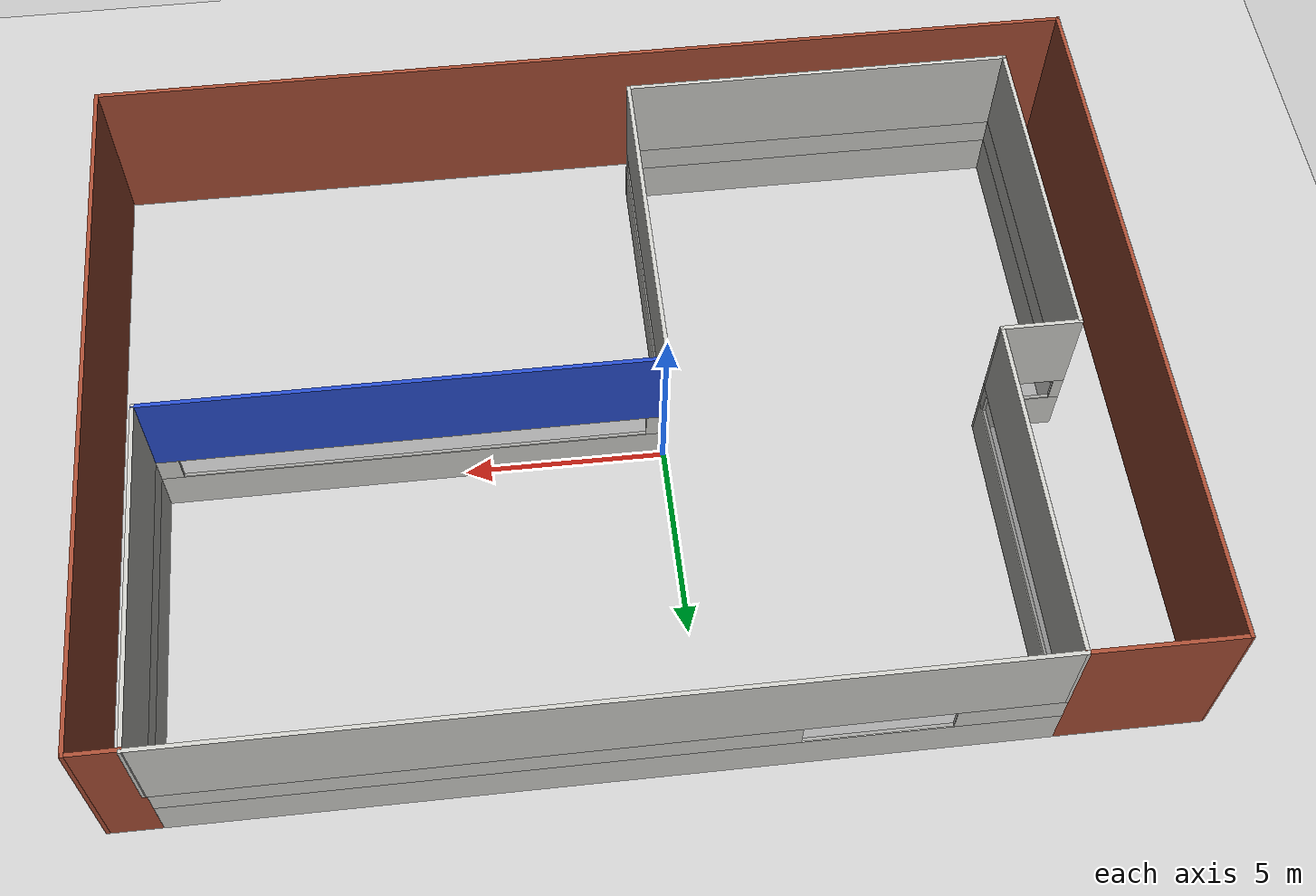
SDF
<sdf version="1.6">
 <world name="default">
  <light name="sun" type="directional">
   <pose>0 0 10 0 -0 0</pose>
   <diffuse>0.8 0.8 0.8 1</diffuse>
   <specular>0.1 0.1 0.1 1</specular>
   <attenuation>
    <range>1000</range>
    <constant>0.9</constant>
    <linear>0.01</linear>
    <quadratic>0.001</quadratic>
   </attenuation>
   <direction>-0.5 0.5 -1</direction>
  </light>
  <model name="ground_plane">
   <static>1</static>
   <link name="link">
    <collision name="collision">
     <geometry><plane><normal>0 0 1</normal><size>100 100</size></plane></geometry>
     <surface><friction><ode><mu>100</mu><mu2>50</mu2></ode></friction></surface>
    </collision>
    <visual name="visual">
     <cast_shadows>0</cast_shadows>
     <geometry><plane><normal>0 0 1</normal><size>100 100</size></plane></geometry>
     <material>
      <script><uri>file://media/materials/scripts/gazebo.material</uri><name>Gazebo/Grey</name></script>
     </material>
    </visual>
   </link>
  </model>
  <gravity>0 0 -9.8</gravity>
  <magnetic_field>6e-06 2.3e-05 -4.2e-05</magnetic_field>
  <atmosphere type="adiabatic"/>
  <physics name="default_physics" default="0" type="ode">
   <max_step_size>0.001</max_step_size>
   <real_time_factor>1</real_time_factor>
   <real_time_update_rate>0</real_time_update_rate>
   <ode>
    <solver>
     <thread_position_correction>1</thread_position_correction>
     <island_threads>500</island_threads>
    </solver>
   </ode>
  </physics>
  <scene><ambient>0.4 0.4 0.4 1</ambient><background>0.7 0.7 0.7 1</background><shadows>0</shadows></scene>
  <spherical_coordinates>
   <surface_model>EARTH_WGS84</surface_model>
   <latitude_deg>0</latitude_deg>
   <longitude_deg>0</longitude_deg>
   <elevation>0</elevation>
   <heading_deg>0</heading_deg>
  </spherical_coordinates>
  <model name="FAV4">
   <pose>1.01716 -0.554551 0 0 -0 0</pose>
   <link name="Wall_103">
    <collision name="Wall_103_Collision">
     <geometry><box><size>12.6 0.1 2.5</size></box></geometry>
     <pose>0 0 1.25 0 -0 0</pose>
    </collision>
    <visual name="Wall_103_Visual">
     <pose>0 0 1.25 0 -0 0</pose>
     <geometry><box><size>12.6 0.1 2.5</size></box></geometry>
     <material>
      <script><uri>file://media/materials/scripts/gazebo.material</uri><name>Gazebo/Blue</name></script>
      <ambient>1 1 1 1</ambient>
     </material>
     <meta><layer>2</layer></meta>
    </visual>
    <pose>5.20501 0.587484 1.95 0 -0 0</pose>
   </link>
   <link name="Wall_105">
    <collision name="Wall_105_Collision">
     <geometry><box><size>8.625 0.1 2.5</size></box></geometry>
     <pose>0 0 1.25 0 -0 0</pose>
    </collision>
    <visual name="Wall_105_Visual">
     <pose>0 0 1.25 0 -0 0</pose>
     <geometry><box><size>8.625 0.1 2.5</size></box></geometry>
     <material>
      <script><uri>file://media/materials/scripts/gazebo.material</uri><name>Gazebo/CeilingTiled</name></script>
      <ambient>1 1 1 1</ambient>
     </material>
     <meta><layer>2</layer></meta>
    </visual>
    <pose>11.455 4.84998 1.95 0 -0 1.5708</pose>
   </link>
   <link name="Wall_107">
    <collision name="Wall_107_Collision">
     <geometry><box><size>20.6 0.1 2.5</size></box></geometry>
     <pose>0 0 1.25 0 -0 0</pose>
    </collision>
    <visual name="Wall_107_Visual">
     <pose>0 0 1.25 0 -0 0</pose>
     <geometry><box><size>20.6 0.1 2.5</size></box></geometry>
     <material>
      <script><uri>file://media/materials/scripts/gazebo.material</uri><name>Gazebo/CeilingTiled</name></script>
      <ambient>1 1 1 1</ambient>
     </material>
     <meta><layer>2</layer></meta>
    </visual>
    <pose>1.20501 9.09998 1.95 0 -0 -3.14037</pose>
   </link>
   <link name="Wall_109">
    <collision name="Wall_109_Collision">
     <geometry><box><size>8.6 0.1 2.5</size></box></geometry>
     <pose>0 0 1.25 0 -0 0</pose>
    </collision>
    <visual name="Wall_109_Visual">
     <pose>0 0 1.25 0 -0 0</pose>
     <geometry><box><size>8.6 0.1 2.5</size></box></geometry>
     <material>
      <script><uri>file://media/materials/scripts/gazebo.material</uri><name>Gazebo/CeilingTiled</name></script>
      <ambient>1 1 1 1</ambient>
     </material>
     <meta><layer>2</layer></meta>
    </visual>
    <pose>-9.04499 4.83748 1.95 0 -0 -1.5708</pose>
   </link>
   <link name="Wall_11">
    <collision name="Wall_11_Collision">
     <geometry><box><size>8.6 0.1 1.2</size></box></geometry>
     <pose>0 0 0.6 0 -0 0</pose>
    </collision>
    <visual name="Wall_11_Visual">
     <pose>0 0 0.6 0 -0 0</pose>
     <geometry><box><size>8.6 0.1 1.2</size></box></geometry>
     <material>
      <script><uri>file://media/materials/scripts/gazebo.material</uri><name>Gazebo/CeilingTiled</name></script>
      <ambient>1 1 1 1</ambient>
     </material>
     <meta><layer>0</layer></meta>
    </visual>
    <pose>11.455 4.83748 0 0 -0 1.5708</pose>
   </link>
   <link name="Wall_111">
    <collision name="Wall_111_Collision">
     <geometry><box><size>2 0.1 2.5</size></box></geometry>
     <pose>0 0 1.25 0 -0 0</pose>
    </collision>
    <visual name="Wall_111_Visual">
     <pose>0 0 1.25 0 -0 0</pose>
     <geometry><box><size>2 0.1 2.5</size></box></geometry>
     <material>
      <script><uri>file://media/materials/scripts/gazebo.material</uri><name>Gazebo/CeilingTiled</name></script>
      <ambient>1 1 1 1</ambient>
     </material>
     <meta><layer>2</layer></meta>
    </visual>
    <pose>-9.99499 0.587484 1.95 0 -0 3.14159</pose>
   </link>
   <link name="Wall_113">
    <collision name="Wall_113_Collision">
     <geometry><box><size>8.6 0.1 2.5</size></box></geometry>
     <pose>0 0 1.25 0 -0 0</pose>
    </collision>
    <visual name="Wall_113_Visual">
     <pose>0 0 1.25 0 -0 0</pose>
     <geometry><box><size>8.6 0.1 2.5</size></box></geometry>
     <material>
      <script><uri>file://media/materials/scripts/gazebo.material</uri><name>Gazebo/CeilingTiled</name></script>
      <ambient>1 1 1 1</ambient>
     </material>
     <meta><layer>2</layer></meta>
    </visual>
    <pose>-10.945 -3.66252 1.95 0 -0 -1.5708</pose>
   </link>
   <link name="Wall_115">
    <collision name="Wall_115_Collision">
     <geometry><box><size>10 0.1 2.5</size></box></geometry>
     <pose>0 0 1.25 0 -0 0</pose>
    </collision>
    <visual name="Wall_115_Visual">
     <pose>0 0 1.25 0 -0 0</pose>
     <geometry><box><size>10 0.1 2.5</size></box></geometry>
     <material>
      <script><uri>file://media/materials/scripts/gazebo.material</uri><name>Gazebo/CeilingTiled</name></script>
      <ambient>1 1 1 1</ambient>
     </material>
     <meta><layer>2</layer></meta>
    </visual>
    <pose>-5.99499 -7.91252 1.95 0 -0 0</pose>
   </link>
   <link name="Wall_117">
    <collision name="Wall_117_Collision">
     <geometry><box><size>8.6 0.1 2.5</size></box></geometry>
     <pose>0 0 1.25 0 -0 0</pose>
    </collision>
    <visual name="Wall_117_Visual">
     <pose>0 0 1.25 0 -0 0</pose>
     <geometry><box><size>8.6 0.1 2.5</size></box></geometry>
     <material>
      <script><uri>file://media/materials/scripts/gazebo.material</uri><name>Gazebo/CeilingTiled</name></script>
      <ambient>1 1 1 1</ambient>
     </material>
     <meta><layer>2</layer></meta>
    </visual>
    <pose>-1.04499 -3.66252 1.95 0 -0 -1.5708</pose>
   </link>
   <link name="Wall_119">
    <collision name="Wall_119_Collision">
     <geometry><box><size>3.7 0.1 4.45</size></box></geometry>
     <pose>0 0 2.225 0 -0 0</pose>
    </collision>
    <visual name="Wall_119_Visual">
     <pose>0 0 2.225 0 -0 0</pose>
     <geometry><box><size>3.7 0.1 4.45</size></box></geometry>
     <material>
      <script><uri>file://media/materials/scripts/gazebo.material</uri><name>Gazebo/Bricks</name></script>
      <ambient>1 1 1 1</ambient>
     </material>
     <meta><layer>0</layer></meta>
    </visual>
    <pose>-10.845 9.08748 0 0 -0 3.14159</pose>
   </link>
   <link name="Wall_120">
    <collision name="Wall_120_Collision">
     <geometry><box><size>18.3 0.1 4.45</size></box></geometry>
     <pose>0 0 2.225 0 -0 0</pose>
    </collision>
    <visual name="Wall_120_Visual">
     <pose>0 0 2.225 0 -0 0</pose>
     <geometry><box><size>18.3 0.1 4.45</size></box></geometry>
     <material>
      <script><uri>file://media/materials/scripts/gazebo.material</uri><name>Gazebo/Bricks</name></script>
      <ambient>1 1 1 1</ambient>
     </material>
     <meta><layer>0</layer></meta>
    </visual>
    <pose>-12.65 -0.012516 0 0 -0 -1.57135</pose>
   </link>
   <link name="Wall_124">
    <collision name="Wall_124_Collision">
     <geometry><box><size>25.41 0.1 4.45</size></box></geometry>
     <pose>0 0 2.225 0 -0 0</pose>
    </collision>
    <visual name="Wall_124_Visual">
     <pose>0 0 2.225 0 -0 0</pose>
     <geometry><box><size>25.41 0.1 4.45</size></box></geometry>
     <material>
      <script><uri>file://media/materials/scripts/gazebo.material</uri><name>Gazebo/Bricks</name></script>
      <ambient>1 1 1 1</ambient>
     </material>
     <meta><layer>0</layer></meta>
    </visual>
    <pose>1.3e-05 -9.11252 0 0 -0 0</pose>
   </link>
   <link name="Wall_127">
    <collision name="Wall_127_Collision">
     <geometry><box><size>18.3 0.1 4.45</size></box></geometry>
     <pose>0 0 2.225 0 -0 0</pose>
    </collision>
    <visual name="Wall_127_Visual">
     <pose>0 0 2.225 0 -0 0</pose>
     <geometry><box><size>18.3 0.1 4.45</size></box></geometry>
     <material>
      <script><uri>file://media/materials/scripts/gazebo.material</uri><name>Gazebo/Bricks</name></script>
      <ambient>1 1 1 1</ambient>
     </material>
     <meta><layer>0</layer></meta>
    </visual>
    <pose>12.655 -0.012516 0 0 -0 1.5708</pose>
   </link>
   <link name="Wall_128">
    <collision name="Wall_128_Collision">
     <geometry><box><size>1.3 0.1 4.45</size></box></geometry>
     <pose>0 0 2.225 0 -0 0</pose>
    </collision>
    <visual name="Wall_128_Visual">
     <pose>0 0 2.225 0 -0 0</pose>
     <geometry><box><size>1.3 0.1 4.45</size></box></geometry>
     <material>
      <script><uri>file://media/materials/scripts/gazebo.material</uri><name>Gazebo/Bricks</name></script>
      <ambient>1 1 1 1</ambient>
     </material>
     <meta><layer>0</layer></meta>
    </visual>
    <pose>12.055 9.08748 0 0 -0 3.14159</pose>
   </link>
   <link name="Wall_13">
    <collision name="Wall_13_Collision">
     <geometry><box><size>20.6 0.1 1.2</size></box></geometry>
     <pose>0 0 0.6 0 -0 0</pose>
    </collision>
    <visual name="Wall_13_Visual">
     <pose>0 0 0.6 0 -0 0</pose>
     <geometry><box><size>20.6 0.1 1.2</size></box></geometry>
     <material>
      <script><uri>file://media/materials/scripts/gazebo.material</uri><name>Gazebo/CeilingTiled</name></script>
      <ambient>1 1 1 1</ambient>
     </material>
     <meta><layer>0</layer></meta>
    </visual>
    <pose>1.20501 9.08748 0 0 -0 3.14159</pose>
   </link>
   <link name="Wall_15">
    <collision name="Wall_15_Collision">
     <geometry><box><size>8.6 0.1 1.2</size></box></geometry>
     <pose>0 0 0.6 0 -0 0</pose>
    </collision>
    <visual name="Wall_15_Visual">
     <pose>0 0 0.6 0 -0 0</pose>
     <geometry><box><size>8.6 0.1 1.2</size></box></geometry>
     <material>
      <script><uri>file://media/materials/scripts/gazebo.material</uri><name>Gazebo/CeilingTiled</name></script>
      <ambient>1 1 1 1</ambient>
     </material>
     <meta><layer>0</layer></meta>
    </visual>
    <pose>-9.04499 4.83748 0 0 -0 -1.5708</pose>
   </link>
   <link name="Wall_17">
    <collision name="Wall_17_Collision">
     <geometry><box><size>2 0.1 1.2</size></box></geometry>
     <pose>0 0 0.6 0 -0 0</pose>
    </collision>
    <visual name="Wall_17_Visual">
     <pose>0 0 0.6 0 -0 0</pose>
     <geometry><box><size>2 0.1 1.2</size></box></geometry>
     <material>
      <script><uri>file://media/materials/scripts/gazebo.material</uri><name>Gazebo/CeilingTiled</name></script>
      <ambient>1 1 1 1</ambient>
     </material>
     <meta><layer>0</layer></meta>
    </visual>
    <pose>-9.99499 0.587484 0 0 -0 3.14159</pose>
   </link>
   <link name="Wall_19">
    <collision name="Wall_19_Collision">
     <geometry><box><size>8.6 0.1 1.2</size></box></geometry>
     <pose>0 0 0.6 0 -0 0</pose>
    </collision>
    <visual name="Wall_19_Visual">
     <pose>0 0 0.6 0 -0 0</pose>
     <geometry><box><size>8.6 0.1 1.2</size></box></geometry>
     <material>
      <script><uri>file://media/materials/scripts/gazebo.material</uri><name>Gazebo/CeilingTiled</name></script>
      <ambient>1 1 1 1</ambient>
     </material>
     <meta><layer>0</layer></meta>
    </visual>
    <pose>-10.945 -3.66252 0 0 -0 -1.5708</pose>
   </link>
   <link name="Wall_21">
    <collision name="Wall_21_Collision">
     <geometry><box><size>10 0.1 1.2</size></box></geometry>
     <pose>0 0 0.6 0 -0 0</pose>
    </collision>
    <visual name="Wall_21_Visual">
     <pose>0 0 0.6 0 -0 0</pose>
     <geometry><box><size>10 0.1 1.2</size></box></geometry>
     <material>
      <script><uri>file://media/materials/scripts/gazebo.material</uri><name>Gazebo/CeilingTiled</name></script>
      <ambient>1 1 1 1</ambient>
     </material>
     <meta><layer>0</layer></meta>
    </visual>
    <pose>-5.99499 -7.91252 0 0 -0 0</pose>
   </link>
   <link name="Wall_23">
    <collision name="Wall_23_Collision">
     <geometry><box><size>8.6 0.1 1.2</size></box></geometry>
     <pose>0 0 0.6 0 -0 0</pose>
    </collision>
    <visual name="Wall_23_Visual">
     <pose>0 0 0.6 0 -0 0</pose>
     <geometry><box><size>8.6 0.1 1.2</size></box></geometry>
     <material>
      <script><uri>file://media/materials/scripts/gazebo.material</uri><name>Gazebo/CeilingTiled</name></script>
      <ambient>1 1 1 1</ambient>
     </material>
     <meta><layer>0</layer></meta>
    </visual>
    <pose>-1.04499 -3.66252 0 0 -0 -1.5708</pose>
   </link>
   <link name="Wall_33">
    <collision name="Wall_33_Collision">
     <geometry><box><size>0.55 0.1 0.75</size></box></geometry>
     <pose>0 0 0.375 0 -0 0</pose>
    </collision>
    <visual name="Wall_33_Visual">
     <pose>0 0 0.375 0 -0 0</pose>
     <geometry><box><size>0.55 0.1 0.75</size></box></geometry>
     <material>
      <script><uri>file://media/materials/scripts/gazebo.material</uri><name>Gazebo/CeilingTiled</name></script>
      <ambient>1 1 1 1</ambient>
     </material>
     <meta><layer>1</layer></meta>
    </visual>
    <pose>-0.819987 0.587484 1.2 0 -0 0</pose>
   </link>
   <link name="Wall_36">
    <collision name="Wall_36_Collision">
     <geometry><box><size>11.55 0.05 0.75</size></box></geometry>
     <pose>0 0 0.375 0 -0 0</pose>
    </collision>
    <visual name="Wall_36_Visual">
     <pose>0 0 0.375 0 -0 0</pose>
     <geometry><box><size>11.55 0.05 0.75</size></box></geometry>
     <material>
      <ambient>0.5 0.5 0.5 1</ambient>
      <diffuse>0.8 0.8 0.8 0.5</diffuse>
      <transparent>1</transparent>
      <opacity>0.2</opacity>
     </material>
     <meta><layer>1</layer></meta>
    </visual>
    <pose>5.15501 0.587484 1.2 0 -0 0</pose>
   </link>
   <link name="Wall_40">
    <collision name="Wall_40_Collision">
     <geometry><box><size>0.65 0.1 0.75</size></box></geometry>
     <pose>0 0 0.375 0 -0 0</pose>
    </collision>
    <visual name="Wall_40_Visual">
     <pose>0 0 0.375 0 -0 0</pose>
     <geometry><box><size>0.65 0.1 0.75</size></box></geometry>
     <material>
      <script><uri>file://media/materials/scripts/gazebo.material</uri><name>Gazebo/CeilingTiled</name></script>
      <ambient>1 1 1 1</ambient>
     </material>
     <meta><layer>1</layer></meta>
    </visual>
    <pose>11.18 0.587484 1.2 0 -0 0</pose>
   </link>
   <link name="Wall_42">
    <collision name="Wall_42_Collision">
     <geometry><box><size>8.6 0.1 0.75</size></box></geometry>
     <pose>0 0 0.375 0 -0 0</pose>
    </collision>
    <visual name="Wall_42_Visual">
     <pose>0 0 0.375 0 -0 0</pose>
     <geometry><box><size>8.6 0.1 0.75</size></box></geometry>
     <material>
      <script><uri>file://media/materials/scripts/gazebo.material</uri><name>Gazebo/CeilingTiled</name></script>
      <ambient>1 1 1 1</ambient>
     </material>
     <meta><layer>1</layer></meta>
    </visual>
    <pose>11.455 4.83748 1.2 0 -0 1.5708</pose>
   </link>
   <link name="Wall_44">
    <collision name="Wall_44_Collision">
     <geometry><box><size>14.6 0.1 0.75</size></box></geometry>
     <pose>0 0 0.375 0 -0 0</pose>
    </collision>
    <visual name="Wall_44_Visual">
     <pose>0 0 0.375 0 -0 0</pose>
     <geometry><box><size>14.6 0.1 0.75</size></box></geometry>
     <material>
      <script><uri>file://media/materials/scripts/gazebo.material</uri><name>Gazebo/CeilingTiled</name></script>
      <ambient>1 1 1 1</ambient>
     </material>
     <meta><layer>1</layer></meta>
    </visual>
    <pose>4.20501 9.08748 1.2 0 -0 3.14159</pose>
   </link>
   <link name="Wall_46">
    <collision name="Wall_46_Collision">
     <geometry><box><size>3.65 0.05 0.75</size></box></geometry>
     <pose>0 0 0.375 0 -0 0</pose>
    </collision>
    <visual name="Wall_46_Visual">
     <pose>0 0 0.375 0 -0 0</pose>
     <geometry><box><size>3.65 0.05 0.75</size></box></geometry>
     <material>
      <ambient>0.5 0.5 0.5 1</ambient>
      <diffuse>0.8 0.8 0.8 0.5</diffuse>
      <transparent>1</transparent>
      <opacity>0.2</opacity>
     </material>
     <meta><layer>1</layer></meta>
    </visual>
    <pose>-4.84499 9.08748 1.2 0 -0 3.14159</pose>
   </link>
   <link name="Wall_48">
    <collision name="Wall_48_Collision">
     <geometry><box><size>2.5 0.1 0.75</size></box></geometry>
     <pose>0 0 0.375 0 -0 0</pose>
    </collision>
    <visual name="Wall_48_Visual">
     <pose>0 0 0.375 0 -0 0</pose>
     <geometry><box><size>2.5 0.1 0.75</size></box></geometry>
     <material>
      <script><uri>file://media/materials/scripts/gazebo.material</uri><name>Gazebo/CeilingTiled</name></script>
      <ambient>1 1 1 1</ambient>
     </material>
     <meta><layer>1</layer></meta>
    </visual>
    <pose>-7.84499 9.08748 1.2 0 -0 3.14159</pose>
   </link>
   <link name="Wall_52">
    <collision name="Wall_52_Collision">
     <geometry><box><size>0.95 0.1 0.75</size></box></geometry>
     <pose>0 0 0.375 0 -0 0</pose>
    </collision>
    <visual name="Wall_52_Visual">
     <pose>0 0 0.375 0 -0 0</pose>
     <geometry><box><size>0.95 0.1 0.75</size></box></geometry>
     <material>
      <script><uri>file://media/materials/scripts/gazebo.material</uri><name>Gazebo/CeilingTiled</name></script>
      <ambient>1 1 1 1</ambient>
     </material>
     <meta><layer>1</layer></meta>
    </visual>
    <pose>-9.04499 8.66248 1.2 0 -0 -1.5708</pose>
   </link>
   <link name="Wall_54">
    <collision name="Wall_54_Collision">
     <geometry><box><size>7.5 0.05 0.75</size></box></geometry>
     <pose>0 0 0.375 0 -0 0</pose>
    </collision>
    <visual name="Wall_54_Visual">
     <pose>0 0 0.375 0 -0 0</pose>
     <geometry><box><size>7.5 0.05 0.75</size></box></geometry>
     <material>
      <ambient>0.5 0.5 0.5 1</ambient>
      <diffuse>0.8 0.8 0.8 0.5</diffuse>
      <transparent>1</transparent>
      <opacity>0.2</opacity>
     </material>
     <meta><layer>1</layer></meta>
    </visual>
    <pose>-9.04499 4.51248 1.2 0 -0 -1.5708</pose>
   </link>
   <link name="Wall_56">
    <collision name="Wall_56_Collision">
     <geometry><box><size>0.3 0.1 0.75</size></box></geometry>
     <pose>0 0 0.375 0 -0 0</pose>
    </collision>
    <visual name="Wall_56_Visual">
     <pose>0 0 0.375 0 -0 0</pose>
     <geometry><box><size>0.3 0.1 0.75</size></box></geometry>
     <material>
      <script><uri>file://media/materials/scripts/gazebo.material</uri><name>Gazebo/CeilingTiled</name></script>
      <ambient>1 1 1 1</ambient>
     </material>
     <meta><layer>1</layer></meta>
    </visual>
    <pose>-9.04499 0.687484 1.2 0 -0 -1.5708</pose>
   </link>
   <link name="Wall_65">
    <collision name="Wall_65_Collision">
     <geometry><box><size>0.3 0.1 0.75</size></box></geometry>
     <pose>0 0 0.375 0 -0 0</pose>
    </collision>
    <visual name="Wall_65_Visual">
     <pose>0 0 0.375 0 -0 0</pose>
     <geometry><box><size>0.3 0.1 0.75</size></box></geometry>
     <material>
      <script><uri>file://media/materials/scripts/gazebo.material</uri><name>Gazebo/CeilingTiled</name></script>
      <ambient>1 1 1 1</ambient>
     </material>
     <meta><layer>1</layer></meta>
    </visual>
    <pose>-9.14499 0.587484 1.2 0 -0 0</pose>
   </link>
   <link name="Wall_67">
    <collision name="Wall_67_Collision">
     <geometry><box><size>1.6 0.05 0.75</size></box></geometry>
     <pose>0 0 0.375 0 -0 0</pose>
    </collision>
    <visual name="Wall_67_Visual">
     <pose>0 0 0.375 0 -0 0</pose>
     <geometry><box><size>1.6 0.05 0.75</size></box></geometry>
     <material>
      <ambient>0.5 0.5 0.5 1</ambient>
      <diffuse>0.8 0.8 0.8 0.5</diffuse>
      <transparent>1</transparent>
      <opacity>0.2</opacity>
     </material>
     <meta><layer>1</layer></meta>
    </visual>
    <pose>-10.02 0.587484 1.2 0 -0 3.14159</pose>
   </link>
   <link name="Wall_69">
    <collision name="Wall_69_Collision">
     <geometry><box><size>0.25 0.1 0.75</size></box></geometry>
     <pose>0 0 0.375 0 -0 0</pose>
    </collision>
    <visual name="Wall_69_Visual">
     <pose>0 0 0.375 0 -0 0</pose>
     <geometry><box><size>0.25 0.1 0.75</size></box></geometry>
     <material>
      <script><uri>file://media/materials/scripts/gazebo.material</uri><name>Gazebo/CeilingTiled</name></script>
      <ambient>1 1 1 1</ambient>
     </material>
     <meta><layer>1</layer></meta>
    </visual>
    <pose>-10.87 0.587484 1.2 0 -0 3.14159</pose>
   </link>
   <link name="Wall_73">
    <collision name="Wall_73_Collision">
     <geometry><box><size>8.6 0.1 0.75</size></box></geometry>
     <pose>0 0 0.375 0 -0 0</pose>
    </collision>
    <visual name="Wall_73_Visual">
     <pose>0 0 0.375 0 -0 0</pose>
     <geometry><box><size>8.6 0.1 0.75</size></box></geometry>
     <material>
      <script><uri>file://media/materials/scripts/gazebo.material</uri><name>Gazebo/CeilingTiled</name></script>
      <ambient>1 1 1 1</ambient>
     </material>
     <meta><layer>1</layer></meta>
    </visual>
    <pose>-10.945 -3.66252 1.2 0 -0 1.5708</pose>
   </link>
   <link name="Wall_75">
    <collision name="Wall_75_Collision">
     <geometry><box><size>10 0.1 0.75</size></box></geometry>
     <pose>0 0 0.375 0 -0 0</pose>
    </collision>
    <visual name="Wall_75_Visual">
     <pose>0 0 0.375 0 -0 0</pose>
     <geometry><box><size>10 0.1 0.75</size></box></geometry>
     <material>
      <script><uri>file://media/materials/scripts/gazebo.material</uri><name>Gazebo/CeilingTiled</name></script>
      <ambient>1 1 1 1</ambient>
     </material>
     <meta><layer>1</layer></meta>
    </visual>
    <pose>-5.99499 -7.91252 1.2 0 -0 0</pose>
   </link>
   <link name="Wall_77">
    <collision name="Wall_77_Collision">
     <geometry><box><size>0.2 0.1 0.75</size></box></geometry>
     <pose>0 0 0.375 0 -0 0</pose>
    </collision>
    <visual name="Wall_77_Visual">
     <pose>0 0 0.375 0 -0 0</pose>
     <geometry><box><size>0.2 0.1 0.75</size></box></geometry>
     <material>
      <script><uri>file://media/materials/scripts/gazebo.material</uri><name>Gazebo/CeilingTiled</name></script>
      <ambient>1 1 1 1</ambient>
     </material>
     <meta><layer>1</layer></meta>
    </visual>
    <pose>-1.04499 -7.86252 1.2 0 -0 1.5708</pose>
   </link>
   <link name="Wall_81">
    <collision name="Wall_81_Collision">
     <geometry><box><size>8.25 0.05 0.75</size></box></geometry>
     <pose>0 0 0.375 0 -0 0</pose>
    </collision>
    <visual name="Wall_81_Visual">
     <pose>0 0 0.375 0 -0 0</pose>
     <geometry><box><size>8.25 0.05 0.75</size></box></geometry>
     <material>
      <ambient>0.5 0.5 0.5 1</ambient>
      <diffuse>0.8 0.8 0.8 0.5</diffuse>
      <transparent>1</transparent>
      <opacity>0.2</opacity>
     </material>
     <meta><layer>1</layer></meta>
    </visual>
    <pose>-1.04499 -3.71252 1.2 0 -0 -1.5708</pose>
   </link>
   <link name="Wall_83">
    <collision name="Wall_83_Collision">
     <geometry><box><size>0.3 0.1 0.75</size></box></geometry>
     <pose>0 0 0.375 0 -0 0</pose>
    </collision>
    <visual name="Wall_83_Visual">
     <pose>0 0 0.375 0 -0 0</pose>
     <geometry><box><size>0.3 0.1 0.75</size></box></geometry>
     <material>
      <script><uri>file://media/materials/scripts/gazebo.material</uri><name>Gazebo/CeilingTiled</name></script>
      <ambient>1 1 1 1</ambient>
     </material>
     <meta><layer>1</layer></meta>
    </visual>
    <pose>-1.04499 0.487484 1.2 0 -0 -1.5708</pose>
   </link>
   <link name="Wall_9">
    <collision name="Wall_9_Collision">
     <geometry><box><size>12.6 0.1 1.2</size></box></geometry>
     <pose>0 0 0.6 0 -0 0</pose>
    </collision>
    <visual name="Wall_9_Visual">
     <pose>0 0 0.6 0 -0 0</pose>
     <geometry><box><size>12.6 0.1 1.2</size></box></geometry>
     <material>
      <script><uri>file://media/materials/scripts/gazebo.material</uri><name>Gazebo/CeilingTiled</name></script>
      <ambient>1 1 1 1</ambient>
     </material>
     <meta><layer>0</layer></meta>
    </visual>
    <pose>5.20501 0.587484 0 0 -0 0</pose>
   </link>
   <static>1</static>
  </model>
 </world>
</sdf>
